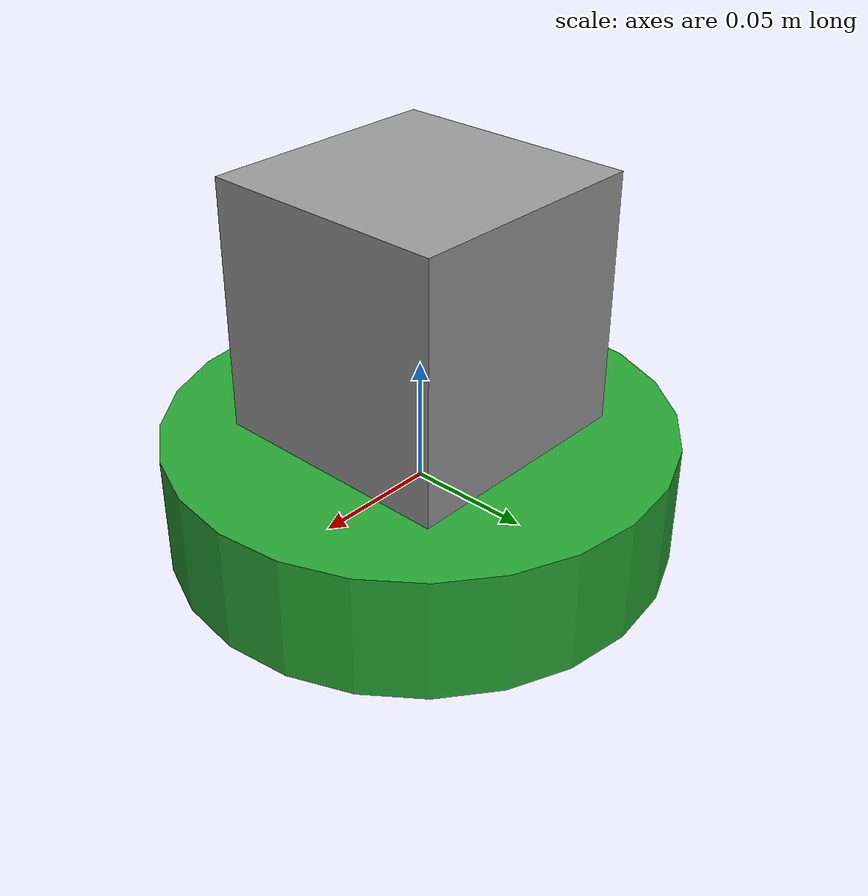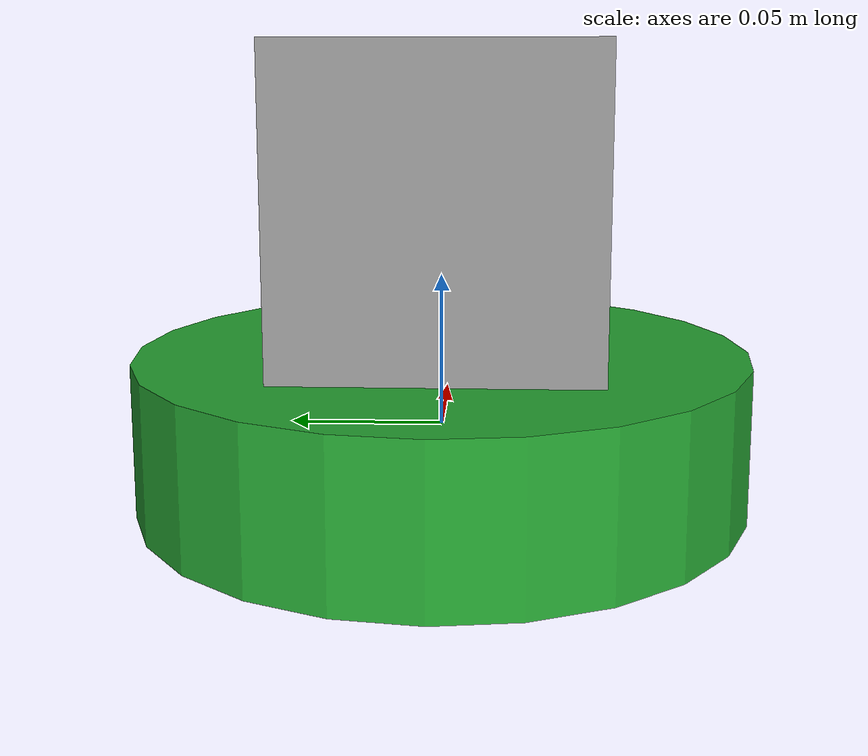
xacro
<?xml version="1.0"?>
<robot xmlns:xacro="http://www.ros.org/wiki/xacro">

    <!--another link-->
    <link name="lidar_link">
        <visual>
            <geometry>
                <cylinder radius="0.1" length="0.05" />
            </geometry>
            <origin xyz="0 0 0" rpy="0 0 0" />
            <material name="green" />
        </visual>
    </link>
    <!--another addotional link  revolute-->
    <link name="revolute_link">
        <visual>
            <geometry>
                <box size="0.1 0.1 0.1" />
            </geometry>
            <origin xyz="0 0 0" rpy="0 0 0" />
            <material name="grey" />
        </visual>
    </link>

    <joint name="lidar_revolute_joint" type="revolute">
        <parent link="lidar_link" />
        <child link="revolute_link" />
        <origin xyz="0 0 0.075" rpy="0 0 0" />
        <axis xyz="0 0 1" />
        <!--limit is must for revolute joint-->
        <!--limit is -90 to +90 in radian-->
        <limit lower="${-pi / 2.0}" upper="${pi / 2.0}" velocity="100" effort="100" />
    </joint>

</robot>
